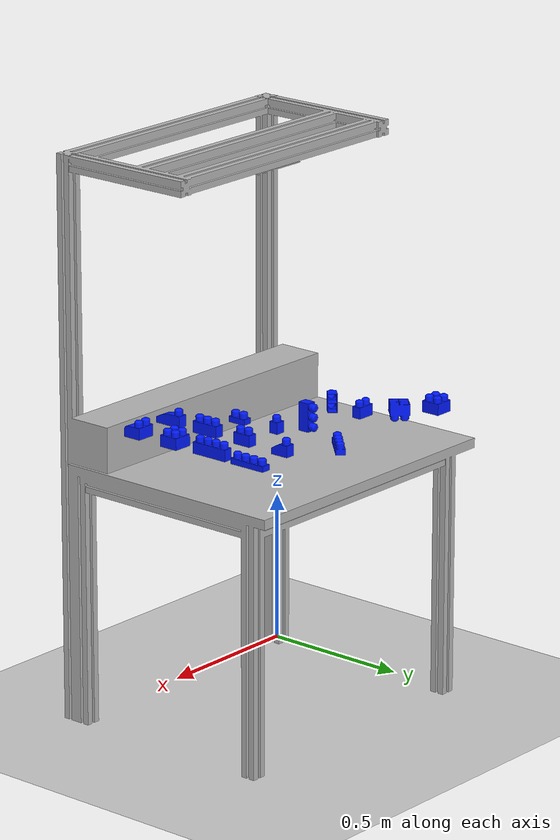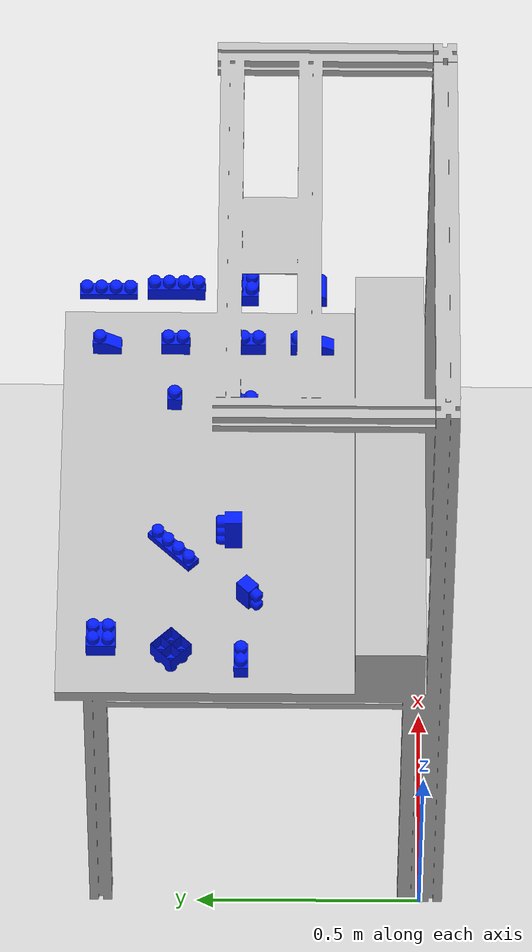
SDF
<?xml version="1.0" ?>
<sdf version="1.4">
  <world name="default">
  <scene>
    <shadows>0</shadows>
  </scene>
    <physics type='ode'>
      <gravity>0 0 -9.81</gravity>
      <!-- max step size has to be a multiple of the desired task rate-->
      <max_step_size>0.001</max_step_size>
      <real_time_factor>1</real_time_factor>
    </physics>
    <!-- A global light source -->
    <include>
      <uri>model://sun</uri>
    </include>
    <!-- A ground plane -->
    <include>
      <uri>model://ground_plane</uri>
    </include>
    <include>
      <name>tavolo</name>
      <uri>model://tavolo</uri>
      <pose>0.0 0.0 0.0 0 0 0</pose>
    </include>
    <include>
      <name>X1-Y2-Z2</name>
      <uri>model://X1-Y2-Z2</uri>
      <pose> 0.2 0.4 0.95   -1.57079632679 0 2.356194</pose>

    </include>
    <include>
      <name>X1-Y2-Z2-2</name>
      <uri>model://X1-Y2-Z2</uri>
      <pose> 0.05 0.4 0.87   0 0 1.57079</pose>

    </include>
    <include>
      <name>X1-Y3-Z2</name>
      <uri>model://X1-Y3-Z2</uri>
      <pose> 0.35 0.4 0.95   -1.57079632679 0 0</pose>

    </include>
    <include>
      <name>X1-Y4-Z1</name>
      <uri>model://X1-Y4-Z1</uri>
      <pose> 0.35 0.55 0.87   0 0 2.356194</pose>

    </include>
    <include>
      <name>X2-Y2-Z2</name>
      <uri>model://X2-Y2-Z2</uri>
      <pose> 0.05 0.7 0.95   0 0 1.57079</pose>

    </include>
    <include>
      <name>X2-Y2-Z2-2</name>
      <uri>model://X2-Y2-Z2</uri>
      <pose> 0.05 0.55 0.95   3.14159265359 0 2.356194</pose>

    </include>

    <include>
      <name>X1-Y1-Z2-Placeholder</name>
      <uri>model://Placeholders/X1-Y1-Z2</uri>
      <pose> 0.65 0.55 1   0 0 0</pose>
      <static>true</static>
    </include>
    <include>
      <name>X1-Y2-Z1-Placeholder</name>
      <uri>model://Placeholders/X1-Y2-Z1</uri>
      <pose> 0.65 0.4 1   0 0 0</pose>
      <static>true</static>
    </include>
    <include>
      <name>X1-Y2-Z2-CHAMFER-Placeholder</name>
      <uri>model://Placeholders/X1-Y2-Z2-CHAMFER</uri>
      <pose> 0.8 0.7 1   0 0 0</pose>
      <static>true</static>
    </include>
    <include>
      <name>X1-Y2-Z2-Placeholder</name>
      <uri>model://Placeholders/X1-Y2-Z2</uri>
      <pose> 0.8 0.55 1   0 0 0</pose>
      <static>true</static>
    </include>
    <include>
      <name>X1-Y3-Z2-Placeholder</name>
      <uri>model://Placeholders/X1-Y3-Z2</uri>
      <pose> 0.8 0.4 1   0 0 0</pose>
      <static>true</static>
    </include>
    <include>
      <name>X1-Y3-Z2-FILLET-Placeholder</name>
      <uri>model://Placeholders/X1-Y3-Z2-FILLET</uri>
      <pose> 0.8 0.25 1   0 0 0</pose>
      <static>true</static>
    </include>
    <include>
      <name>X1-Y4-Z1-Placeholder</name>
      <uri>model://Placeholders/X1-Y4-Z1</uri>
      <pose> 0.95 0.7 1   0 0 0</pose>
      <static>true</static>
    </include>
    <include>
      <name>X1-Y4-Z2-Placeholder</name>
      <uri>model://Placeholders/X1-Y4-Z2</uri>
      <pose> 0.95 0.55 1   0 0 0</pose>
      <static>true</static>
    </include>
    <include>
      <name>X2-Y2-Z2-Placeholder</name>
      <uri>model://Placeholders/X2-Y2-Z2</uri>
      <pose> 0.95 0.4 1   0 0 0</pose>
      <static>true</static>
    </include>
    <include>
      <name>X2-Y2-Z2-FILLET-Placeholder</name>
      <uri>model://Placeholders/X2-Y2-Z2-FILLET</uri>
      <pose> 0.95 0.25 1   0 0 0</pose>
      <static>true</static>
    </include>

     <gui>
    <camera name="gzclient_camera">
      <pose>1. 3.2 2.2 0. 0.4 -1.75</pose>
    </camera>
    </gui>

  </world>
</sdf>

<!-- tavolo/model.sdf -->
<sdf version="1.4">

<physics type="ode">

      <ode>

        <constraints>
          <contact_max_correcting_vel>0.1</contact_max_correcting_vel>
          <contact_surface_layer>0.0001</contact_surface_layer>
        </constraints>
      </ode>
	<max_contacts>10</max_contacts>
	</physics>

	<model name="tavolo">
	    <static>true</static>
		<link name="link">

		     <collision name="base">
			<pose>0.5 0.4 0.85 0 0 0</pose>
			<geometry>
			  <box>
			    <size>1 0.8 0.04</size>
			  </box>
			</geometry>

				<!-- see https://gazebosim.org/tutorials?tut=physics_params&cat=physics-->
				 <surface>
				  <bounce>
				    <restitution_coefficient>0.01</restitution_coefficient>
				    <threshold>5.0</threshold>
				  </bounce>
				  <friction>
				    <ode>
				      <mu>1</mu>
				      <mu2>1</mu2>
				    </ode>
				  </friction>
				  <contact>
				     <ode>
					<max_vel>0.1</max_vel>
					<min_depth>0.001</min_depth>
				        <kp>1000000.0</kp>
					<kd>1000.0</kd>
				      </ode>
			            </contact>
				</surface>

		     	</collision>

	     			<collision name="box">
				<pose>0.5 0.08 0.95 0 0 0</pose>
				<geometry>
				  <box>
				    <size>1 0.15 0.15</size>
				  </box>
				</geometry>

				 <surface>
				  <bounce>
				    <restitution_coefficient>0.01</restitution_coefficient>
				    <threshold>5.0</threshold>
				  </bounce>
				  <friction>
				    <ode>
				      <mu>1</mu>
				      <mu2>1</mu2>
				    </ode>
				  </friction>
				  <contact>
				     <ode>
					<max_vel>0.1</max_vel>
					<min_depth>0.001</min_depth>
				        <kp>1000000.0</kp>
					<kd>1000.0</kd>
				      </ode>
			            </contact>
				</surface>

			      </collision>

			   <collision name="back">
				<pose>0.5 -0.02 1.35 1.57 0 0</pose>
				<geometry>
				  <box>
				    <size>1 1.0 0.04</size>
				  </box>
				</geometry>

				 <surface>
				  <bounce>
				    <restitution_coefficient>0.01</restitution_coefficient>
				    <threshold>5.0</threshold>
				  </bounce>
				  <friction>
				    <ode>
				      <mu>1</mu>
				      <mu2>1</mu2>
				    </ode>
				  </friction>
				  <contact>
				     <ode>
					<max_vel>0.1</max_vel>
					<min_depth>0.001</min_depth>
				        <kp>1000000.0</kp>
					<kd>1000.0</kd>
				      </ode>
			            </contact>
				</surface>

			      </collision>

			<visual name="visual">
				<geometry>
					<mesh>
						<uri>model://tavolo/mesh/tavolo.stl</uri>
                                                <scale>0.001 0.001 0.001</scale>
					</mesh>
				</geometry>
			</visual>
		</link>
	</model>
</sdf>

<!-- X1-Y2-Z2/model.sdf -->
<sdf version="1.6">
	<model name="X1-Y1-Z2">
		<pose>0 0 0 0 0 0</pose>
		<link name="lego_link">
			<inertial>
			<pose>0 0 0.029 0 0 0</pose>
				<mass>1</mass>
				<inertia>
					<ixx>0.001</ixx>
					<ixy>0</ixy>
					<ixz>0</ixz>
					<iyy>0.001</iyy>
					<iyz>0</iyz>
					<izz>0.001</izz>
				</inertia>
			</inertial>
			<collision name="lego_collision">
				<geometry>
					<mesh>
						<uri>model://X1-Y2-Z2/mesh/X1-Y2-Z2.stl</uri>
					</mesh>
				</geometry>
				<surface>
					<friction>
						<ode>
							<mu>0.5</mu>
						</ode>
					</friction>
					<bounce>
						<restitution_coefficient>0.8</restitution_coefficient>
					</bounce>
				</surface>
			</collision>
			<visual name="lego_visual">
				<material>
					<ambient>0 0.1 1 1</ambient>
				</material>
				<geometry>
					<mesh>
						<uri>model://X1-Y2-Z2/mesh/X1-Y2-Z2.stl</uri>
					</mesh>
				</geometry>
			</visual>
		</link>
	</model>
</sdf>

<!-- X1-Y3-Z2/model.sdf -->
<sdf version="1.6">
	<model name="X1-Y1-Z2">
		<pose>0 0 0 0 0 0</pose>
		<link name="lego_link">
			<inertial>
			<pose>0 0 0.029 0 0 0</pose>
				<mass>1</mass>
				<inertia>
					<ixx>0.001</ixx>
					<ixy>0</ixy>
					<ixz>0</ixz>
					<iyy>0.001</iyy>
					<iyz>0</iyz>
					<izz>0.001</izz>
				</inertia>
			</inertial>
			<collision name="lego_collision">
				<geometry>
					<mesh>
						<uri>model://X1-Y3-Z2/mesh/X1-Y3-Z2.stl</uri>
					</mesh>
				</geometry>
				<surface>
					<friction>
						<ode>
							<mu>0.5</mu>
						</ode>
					</friction>
					<bounce>
						<restitution_coefficient>0.8</restitution_coefficient>
					</bounce>
				</surface>
			</collision>
			<visual name="lego_visual">
				<material>
					<ambient>0 0.1 1 1</ambient>
				</material>
				<geometry>
					<mesh>
						<uri>model://X1-Y3-Z2/mesh/X1-Y3-Z2.stl</uri>
					</mesh>
				</geometry>
			</visual>
		</link>
	</model>
</sdf>

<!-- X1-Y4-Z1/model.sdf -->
<sdf version="1.6">
	<model name="X1-Y1-Z2">
		<pose>0 0 0 0 0 0</pose>
		<link name="lego_link">
			<inertial>
			<pose>0 0 0.019 0 0 0</pose>
				<mass>1</mass>
				<inertia>
					<ixx>0.001</ixx>
					<ixy>0</ixy>
					<ixz>0</ixz>
					<iyy>0.001</iyy>
					<iyz>0</iyz>
					<izz>0.001</izz>
				</inertia>
			</inertial>
			<collision name="lego_collision">
				<geometry>
					<mesh>
						<uri>model://X1-Y4-Z1/mesh/X1-Y4-Z1.stl</uri>
					</mesh>
				</geometry>
				<surface>
					<friction>
						<ode>
							<mu>0.5</mu>
						</ode>
					</friction>
					<bounce>
						<restitution_coefficient>0.8</restitution_coefficient>
					</bounce>
				</surface>
			</collision>
			<visual name="lego_visual">
				<material>
					<ambient>0 0.1 1 1</ambient>
				</material>
				<geometry>
					<mesh>
						<uri>model://X1-Y4-Z1/mesh/X1-Y4-Z1.stl</uri>
					</mesh>
				</geometry>
			</visual>
		</link>
	</model>
</sdf>

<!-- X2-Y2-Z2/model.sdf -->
<sdf version="1.6">
	<model name="X1-Y1-Z2">
		<pose>0 0 0 0 0 0</pose>
		<link name="lego_link">
			<inertial>
			<pose>0 0 0.029 0 0 0</pose>
				<mass>1</mass>
				<inertia>
					<ixx>0.001</ixx>
					<ixy>0</ixy>
					<ixz>0</ixz>
					<iyy>0.001</iyy>
					<iyz>0</iyz>
					<izz>0.001</izz>
				</inertia>
			</inertial>
			<collision name="lego_collision">
				<geometry>
					<mesh>
						<uri>model://X2-Y2-Z2/mesh/X2-Y2-Z2.stl</uri>
					</mesh>
				</geometry>
				<surface>
					<friction>
						<ode>
							<mu>0.5</mu>
						</ode>
					</friction>
					<bounce>
						<restitution_coefficient>0.8</restitution_coefficient>
					</bounce>
				</surface>
			</collision>
			<visual name="lego_visual">
				<material>
					<ambient>0 0.1 1 1</ambient>
				</material>
				<geometry>
					<mesh>
						<uri>model://X2-Y2-Z2/mesh/X2-Y2-Z2.stl</uri>
					</mesh>
				</geometry>
			</visual>
		</link>
	</model>
</sdf>

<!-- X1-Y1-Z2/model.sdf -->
<sdf version="1.6">
	<model name="X1-Y1-Z2">
		<pose>0 0 0 0 0 0</pose>
		<link name="lego_link">
			<inertial>
			<pose>0 0 0.029 0 0 0</pose>
				<mass>1</mass>
				<inertia>
					<ixx>0.001</ixx>
					<ixy>0</ixy>
					<ixz>0</ixz>
					<iyy>0.001</iyy>
					<iyz>0</iyz>
					<izz>0.001</izz>
				</inertia>
			</inertial>
			<collision name="lego_collision">
				<geometry>
					<mesh>
						<uri>model://X1-Y1-Z2/mesh/X1-Y1-Z2.stl</uri>
					</mesh>
				</geometry>
				<surface>
					<friction>
						<ode>
							<mu>0.5</mu>
						</ode>
					</friction>
					<bounce>
						<restitution_coefficient>0.8</restitution_coefficient>
					</bounce>
				</surface>
			</collision>
			<visual name="lego_visual">
				<material>
					<ambient>0 0.1 1 1</ambient>
				</material>
				<geometry>
					<mesh>
						<uri>model://X1-Y1-Z2/mesh/X1-Y1-Z2.stl</uri>
					</mesh>
				</geometry>
			</visual>
		</link>
	</model>
</sdf>

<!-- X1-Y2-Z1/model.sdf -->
<sdf version="1.6">
	<model name="X1-Y1-Z2">
		<pose>0 0 0 0 0 0</pose>
		<link name="lego_link">
			<inertial>
			<pose>0 0 0.019 0 0 0</pose>
				<mass>1</mass>
				<inertia>
					<ixx>0.001</ixx>
					<ixy>0</ixy>
					<ixz>0</ixz>
					<iyy>0.001</iyy>
					<iyz>0</iyz>
					<izz>0.001</izz>
				</inertia>
			</inertial>
			<collision name="lego_collision">
				<geometry>
					<mesh>
						<uri>model://X1-Y2-Z1/mesh/X1-Y2-Z1.stl</uri>
					</mesh>
				</geometry>
				<surface>
					<friction>
						<ode>
							<mu>0.5</mu>
						</ode>
					</friction>
					<bounce>
						<restitution_coefficient>0.8</restitution_coefficient>
					</bounce>
				</surface>
			</collision>
			<visual name="lego_visual">
				<material>
					<ambient>0 0.1 1 1</ambient>
				</material>
				<geometry>
					<mesh>
						<uri>model://X1-Y2-Z1/mesh/X1-Y2-Z1.stl</uri>
					</mesh>
				</geometry>
			</visual>
		</link>
	</model>
</sdf>

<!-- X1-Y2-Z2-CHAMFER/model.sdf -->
<sdf version="1.6">
	<model name="X1-Y1-Z2">
		<pose>0 0 0 0 0 0</pose>
		<link name="lego_link">
			<inertial>
			<pose>0 0 0.029 0 0 0</pose>
				<mass>1</mass>
				<inertia>
					<ixx>0.001</ixx>
					<ixy>0</ixy>
					<ixz>0</ixz>
					<iyy>0.001</iyy>
					<iyz>0</iyz>
					<izz>0.001</izz>
				</inertia>
			</inertial>
			<collision name="lego_collision">
				<geometry>
					<mesh>
						<uri>model://X1-Y2-Z2-CHAMFER/mesh/X1-Y2-Z2-CHAMFER.stl</uri>
					</mesh>
				</geometry>
				<surface>
					<friction>
						<ode>
							<mu>0.5</mu>
						</ode>
					</friction>
					<bounce>
						<restitution_coefficient>0.8</restitution_coefficient>
					</bounce>
				</surface>
			</collision>
			<visual name="lego_visual">
				<material>
					<ambient>0 0.1 1 1</ambient>
				</material>
				<geometry>
					<mesh>
						<uri>model://X1-Y2-Z2-CHAMFER/mesh/X1-Y2-Z2-CHAMFER.stl</uri>
					</mesh>
				</geometry>
			</visual>
		</link>
	</model>
</sdf>

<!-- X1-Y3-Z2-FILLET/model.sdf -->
<sdf version="1.6">
	<model name="X1-Y1-Z2">
		<pose>0 0 0 0 0 0</pose>
		<link name="lego_link">
			<inertial>
			<pose>0 -0.015 0.029 0 0 0</pose>
				<mass>1</mass>
				<inertia>
					<ixx>0.001</ixx>
					<ixy>0</ixy>
					<ixz>0</ixz>
					<iyy>0.001</iyy>
					<iyz>0</iyz>
					<izz>0.001</izz>
				</inertia>
			</inertial>
			<collision name="lego_collision">
				<geometry>
					<mesh>
						<uri>model://X1-Y3-Z2-FILLET/mesh/X1-Y3-Z2-FILLET.stl</uri>
					</mesh>
				</geometry>
				<surface>
					<friction>
						<ode>
							<mu>0.5</mu>
						</ode>
					</friction>
					<bounce>
						<restitution_coefficient>0.8</restitution_coefficient>
					</bounce>
				</surface>
			</collision>
			<visual name="lego_visual">
				<material>
					<ambient>0 0.1 1 1</ambient>
				</material>
				<geometry>
					<mesh>
						<uri>model://X1-Y3-Z2-FILLET/mesh/X1-Y3-Z2-FILLET.stl</uri>
					</mesh>
				</geometry>
			</visual>
		</link>
	</model>
</sdf>

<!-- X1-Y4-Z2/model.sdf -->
<sdf version="1.6">
	<model name="X1-Y1-Z2">
		<pose>0 0 0 0 0 0</pose>
		<link name="lego_link">
			<inertial>
			<pose>0 0 0.029 0 0 0</pose>
				<mass>1</mass>
				<inertia>
					<ixx>0.001</ixx>
					<ixy>0</ixy>
					<ixz>0</ixz>
					<iyy>0.001</iyy>
					<iyz>0</iyz>
					<izz>0.001</izz>
				</inertia>
			</inertial>
			<collision name="lego_collision">
				<geometry>
					<mesh>
						<uri>model://X1-Y4-Z2/mesh/X1-Y4-Z2.stl</uri>
					</mesh>
				</geometry>
				<surface>
					<friction>
						<ode>
							<mu>0.5</mu>
						</ode>
					</friction>
					<bounce>
						<restitution_coefficient>0.8</restitution_coefficient>
					</bounce>
				</surface>
			</collision>
			<visual name="lego_visual">
				<material>
					<ambient>0 0.1 1 1</ambient>
				</material>
				<geometry>
					<mesh>
						<uri>model://X1-Y4-Z2/mesh/X1-Y4-Z2.stl</uri>
					</mesh>
				</geometry>
			</visual>
		</link>
	</model>
</sdf>

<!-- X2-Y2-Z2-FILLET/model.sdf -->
<sdf version="1.6">
	<model name="X1-Y1-Z2">
		<pose>0 0 0 0 0 0</pose>
		<link name="lego_link">
			<inertial>
			<pose>0 0 0.029 0 0 0</pose>
				<mass>1</mass>
				<inertia>
					<ixx>0.001</ixx>
					<ixy>0</ixy>
					<ixz>0</ixz>
					<iyy>0.001</iyy>
					<iyz>0</iyz>
					<izz>0.001</izz>
				</inertia>
			</inertial>
			<collision name="lego_collision">
				<geometry>
					<mesh>
						<uri>model://X2-Y2-Z2-FILLET/mesh/X2-Y2-Z2-FILLET.stl</uri>
					</mesh>
				</geometry>
				<surface>
					<friction>
						<ode>
							<mu>0.5</mu>
						</ode>
					</friction>
					<bounce>
						<restitution_coefficient>0.8</restitution_coefficient>
					</bounce>
				</surface>
			</collision>
			<visual name="lego_visual">
				<material>
					<ambient>0 0.1 1 1</ambient>
				</material>
				<geometry>
					<mesh>
						<uri>model://X2-Y2-Z2-FILLET/mesh/X2-Y2-Z2-FILLET.stl</uri>
					</mesh>
				</geometry>
			</visual>
		</link>
	</model>
</sdf>
